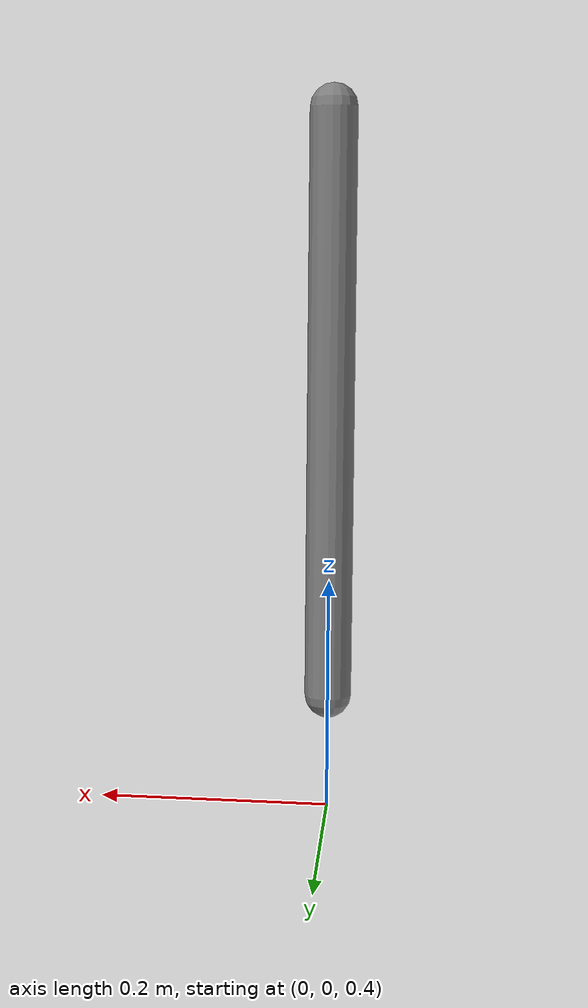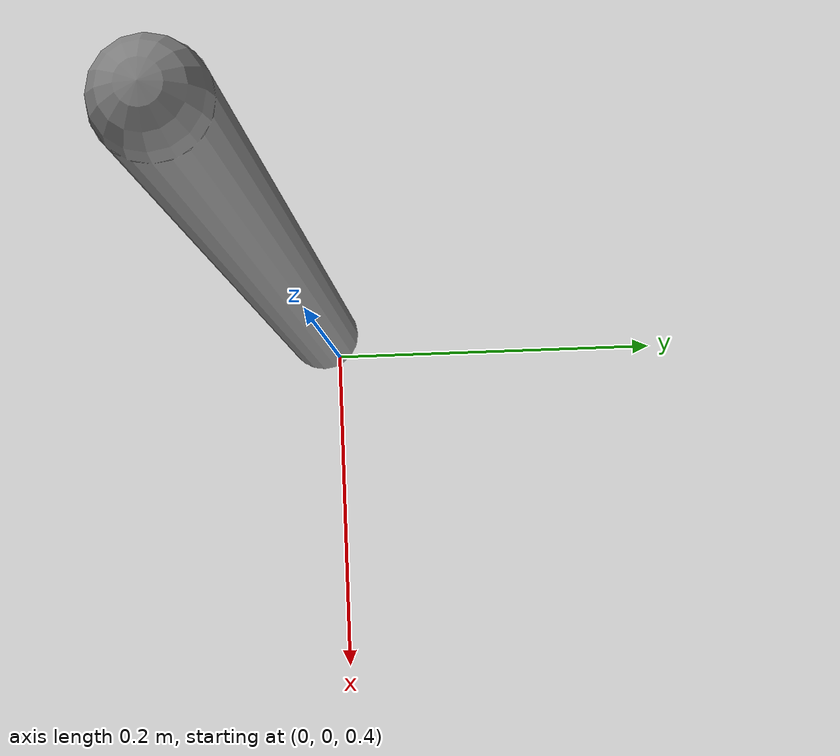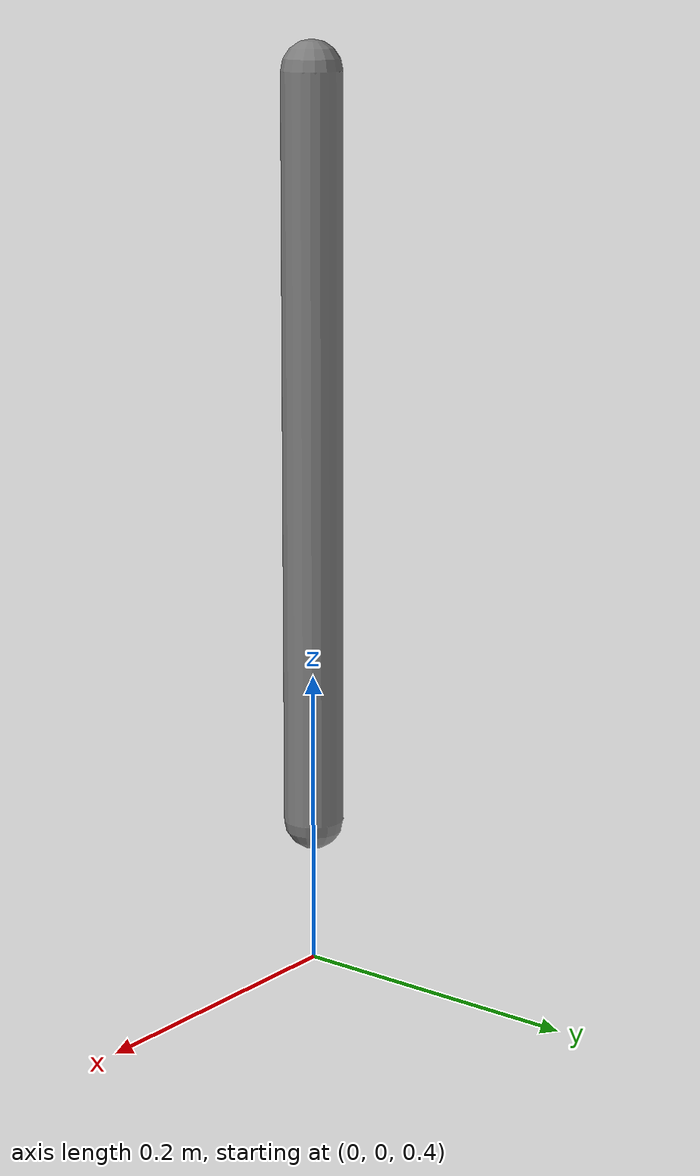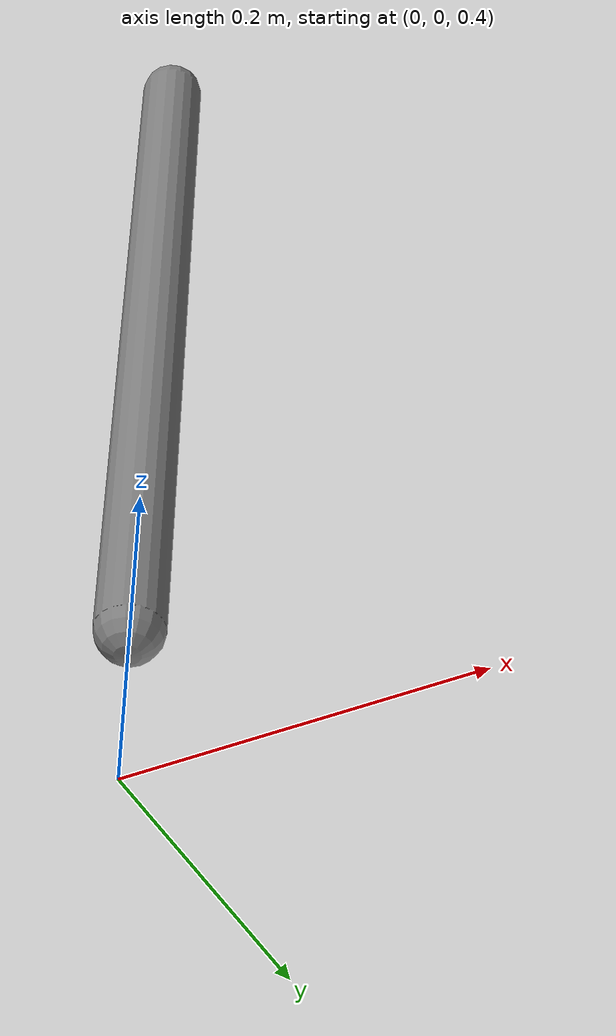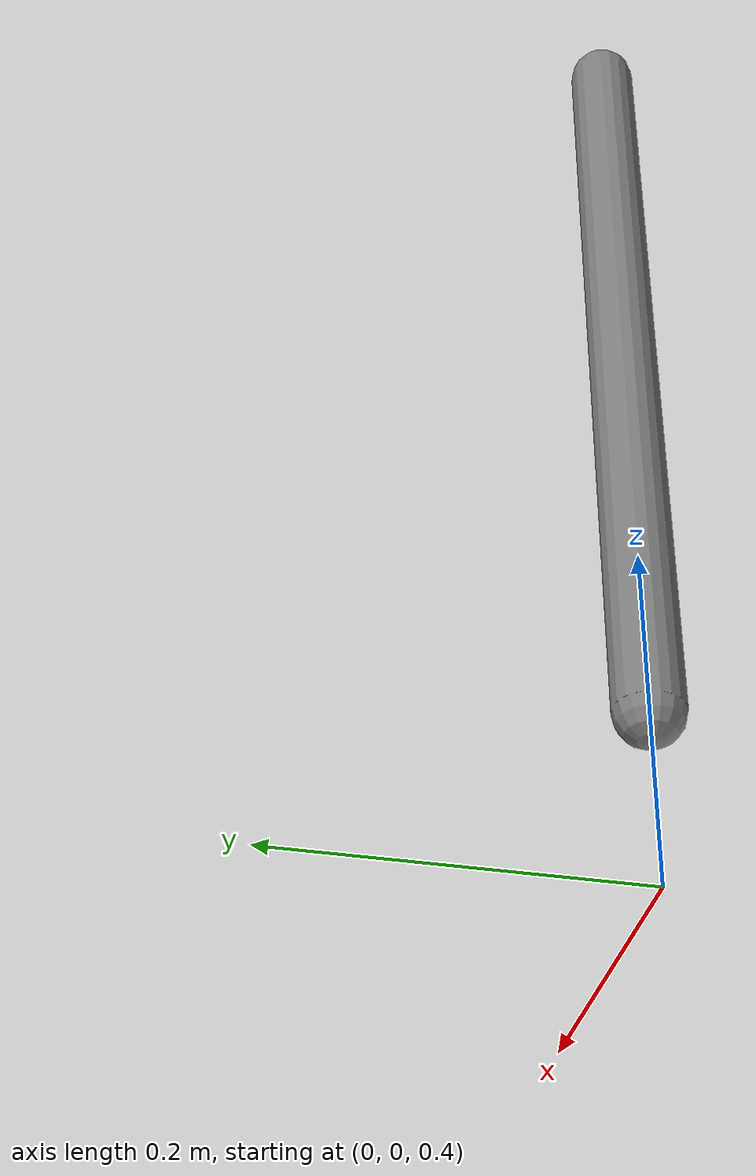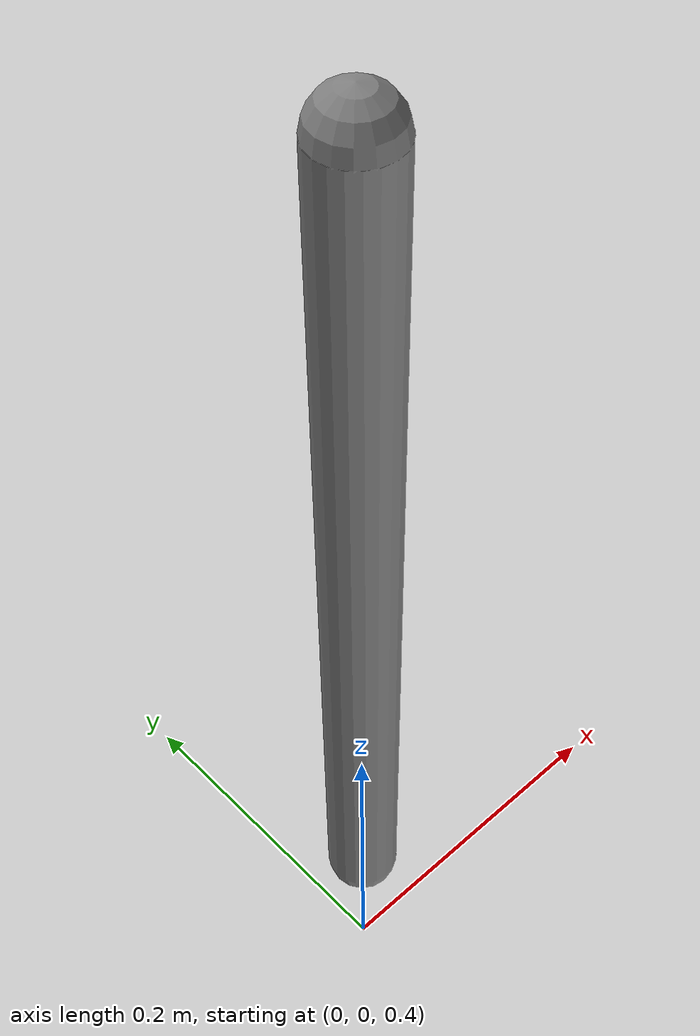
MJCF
<mujoco model="pendulum">
  <option timestep="0.005" gravity="0 0 -9.81"/>
  <worldbody>
	<body name="arm" pos="0 0 1">
	  <joint name="hinge" type="hinge" axis="0 1 0" pos="0 0 0"/>
	  <geom name="rod" type="capsule" fromto="0 0 0 0 0 -0.5" size="0.02" density="1000"/>
	</body>
  </worldbody>
</mujoco>
